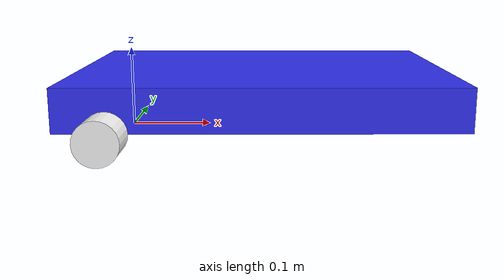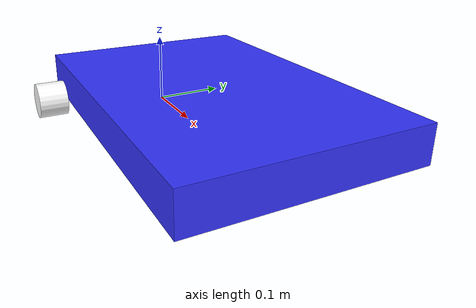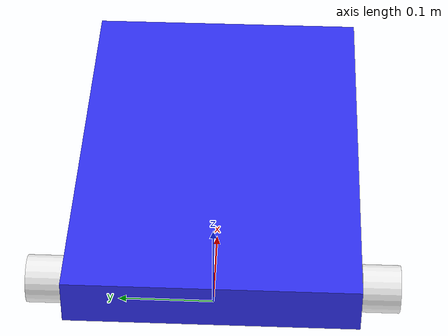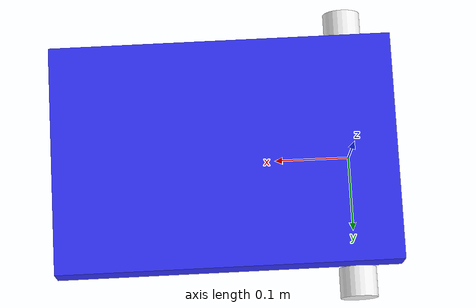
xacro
<?xml version="1.0"?>
<robot xmlns:xacro="http://www.ros.org/wiki/xacro">
    <xacro:include filename="inertial_macros.xacro" />
    <material name="white">
        <color rgba="1 1 1 1"/>
    </material>
    <material name="orange">
        <color rgba="1 0.3 0.1 1"/>
    </material>
    <material name="blue">
        <color rgba="0.2 0.2 1 1"/>
    </material>
    <material name="black">
        <color rgba="0 0 0 1"/>
    </material>
    <material name="red">
        <color rgba="1 0 0 1"/>
    </material>

    <link name="base_link"></link>

    <joint name="chassis_joint" type="fixed">
        <parent link="base_link"/>
        <child link="chassis"/>
        <origin xyz="-0.0508 0 0"/>
    </joint>
    <link name="chassis">
        <visual>
            <origin xyz="0.22 0 0.0508" rpy="0 0 0"/>
            <geometry>
                <box size="0.457 0.305 0.0508"/>
            </geometry>
            <material name="blue"/>
        </visual>
        <collision>
            <origin xyz="0.22 0 0.0508" rpy="0 0 0"/>
            <geometry>
                <box size="0.457 0.305 0.0508"/>
            </geometry>
        </collision>
        <xacro:inertial_box mass="0.5" x="0.457" y="0.305" z="0.0508">
            <origin xyz="0.22 0 0.0508" rpy="0 0 0"/>
        </xacro:inertial_box>
    </link>
    <gazebo reference="chassis">
        <material>Gazebo/Blue</material>
    </gazebo>

    <joint name="left_wheel_joint" type="continuous">
        <parent link="base_link"/>
        <child link="left_wheel"/>
        <origin xyz="0 0.175 0.026" rpy="-${pi/2} 0 0"/>
        <axis xyz="0 0 1"/>
    </joint>

    <link name="left_wheel">
        <visual>
            <geometry>
                <cylinder length="0.04" radius="0.025" />
            </geometry>
            <material name="white"/>
        </visual>
        <collision>
            <geometry>
                <cylinder length="0.04" radius="0.025" />
            </geometry>
        </collision>
        <xacro:inertial_cylinder mass="0.1" length="0.04" radius="0.025">
            <origin xyz="0 0 0" rpy="0 0 0"/>
        </xacro:inertial_cylinder>
    </link>
    <gazebo reference="left_wheel">
        <material>Gazebo/White</material>
    </gazebo>

    <joint name="right_wheel_joint" type="continuous">
        <parent link="base_link"/>
        <child link="right_wheel"/>
        <origin xyz="0 -0.175 0.026" rpy="${pi/2} 0 0"/>
        <axis xyz="0 0 1"/>
    </joint>

    <link name="right_wheel">
        <visual>
            <geometry>
                <cylinder length="0.04" radius="0.025" />
            </geometry>
            <material name="white"/>
        </visual>
        <collision>
            <geometry>
                <cylinder length="0.04" radius="0.025" />
            </geometry>
        </collision>
        <xacro:inertial_cylinder mass="0.1" length="0.04" radius="0.025">
            <origin xyz="0 0 0" rpy="0 0 0"/>
        </xacro:inertial_cylinder>
    </link>
    <gazebo reference="right_wheel">
        <material>Gazebo/White</material>
    </gazebo>

    <!-- CASTER WHEEL -->

    <joint name="caster_wheel_joint" type="fixed">
        <parent link="chassis"/>
        <child link="caster_wheel"/>
        <origin xyz="0.4 0 0.0258" rpy="0 0 0"/>
    </joint>

    <link name="caster_wheel">
        <visual>
            <geometry>
                <sphere radius="0.0258" />
            </geometry>
            <material name="black"/>
        </visual>
        <collision>
            <geometry>
                <sphere radius="0.0258" />
            </geometry>
        </collision>
        <xacro:inertial_sphere mass="0.1" radius="0.0258">
            <origin xyz="0 0 0" rpy="0 0 0"/>
        </xacro:inertial_sphere>
    </link>
    <gazebo reference="caster_wheel">
        <material>Gazebo/Black</material>
        <mu1 value="0.001"/>
        <mu2 value="0.001"/>
    </gazebo>
</robot>
